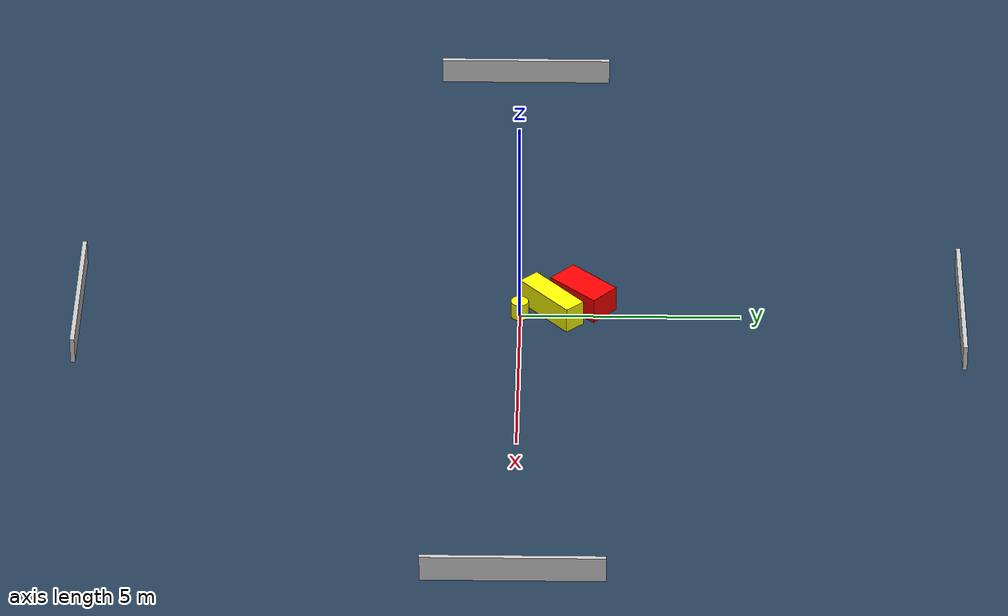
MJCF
<?xml version="1.0" ?>
<mujoco model="generated_environment">
  <option timestep="0.01" integrator="RK4" cone="elliptic"/>
  <default>
    <geom density="1"/>
  </default>
  <asset>
    <texture builtin="gradient" height="3072" name="skybox" rgb1="0.3 0.5 0.7" rgb2="0 0 0" type="skybox" width="512"/>
    <texture builtin="checker" height="300" name="groundplane" rgb1="0.2 0.3 0.4" rgb2="0.1 0.2 0.3" type="2d" width="300"/>
    <material name="groundplane" reflectance="0.2" texrepeat="5 5" texture="groundplane"/>
  </asset>
  <worldbody>
    <light dir="0 0 -1" directional="true" pos="0 0 1.5"/>
    <geom condim="3" friction="0.5 0.005 0.001" material="groundplane" name="floor" pos="0 0 0" size="0 0 0.05" type="plane"/>
    <body name="walls">
      <geom name="wall_1" condim="4" pos="-10.0 0.0 0.3" rgba="0.800000011920929 0.800000011920929 0.800000011920929 1.0" size="0.05 2.0 0.3" type="box"/>
      <geom name="wall_2" condim="4" pos="10.0 0.0 0.3" rgba="0.800000011920929 0.800000011920929 0.800000011920929 1.0" size="0.05 2.0 0.3" type="box"/>
      <geom name="wall_3" condim="4" pos="0.0 -10.0 0.3" rgba="0.800000011920929 0.800000011920929 0.800000011920929 1.0" size="2.0 0.05 0.3" type="box"/>
      <geom name="wall_4" condim="4" pos="0.0 10.0 0.3" rgba="0.800000011920929 0.800000011920929 0.800000011920929 1.0" size="2.0 0.05 0.3" type="box"/>
    </body>
    <body name="robot">
      <joint name="joint_x" type="slide" pos="0 0 0" axis="1 0 0"/>
      <joint name="joint_y" type="slide" pos="0 0 0" axis="0 1 0"/>
      <geom name="robot" type="cylinder" pos="0.0 0.0 0.2" size="0.2 0.2 0.0" mass="5.0" friction="1.0 0.005 0.0001" condim="4" rgba="1.0 1.0 0.0 1.0"/>
    </body>
    <body name="obstacle_1_movable">
      <geom name="obstacle_1_movable" condim="4" pos="-0.11973097508152708 0.724508575363114 0.3" euler="0 0 311.6929747786265" friction="0.0 0.005 0.001" rgba="1.0 1.0 0.0 1.0" size="0.25353113923363124 0.7996886900444118 0.3" type="box" mass="0.1"/>
      <joint type="free"/>
    </body>
    <body name="obstacle_2_static">
      <geom name="obstacle_2_static" condim="4" pos="-0.47115141543063993 1.4391030237600544 0.3" euler="0 0 46.68938874141589" friction="0.0 0.005 0.001" rgba="1.0 0.0 0.0 1.0" size="0.6748231923083028 0.3685254405583568 0.3" type="box"/>
    </body>
  </worldbody>
  <actuator>
    <motor name="actuator_x" joint="joint_x" gear="1" ctrlrange="-1 1"/>
    <motor name="actuator_y" joint="joint_y" gear="1" ctrlrange="-1 1"/>
  </actuator>
</mujoco>
